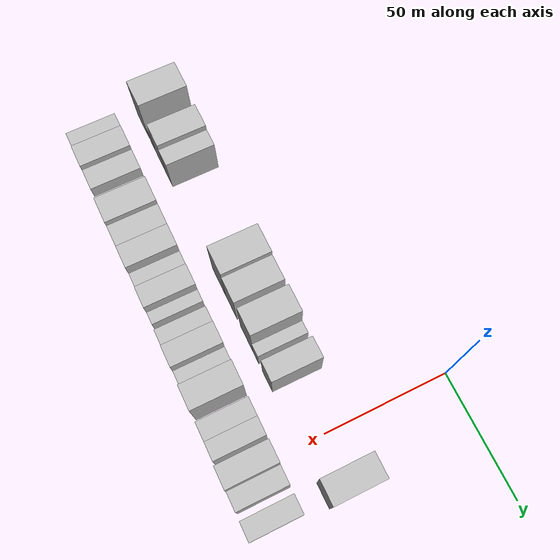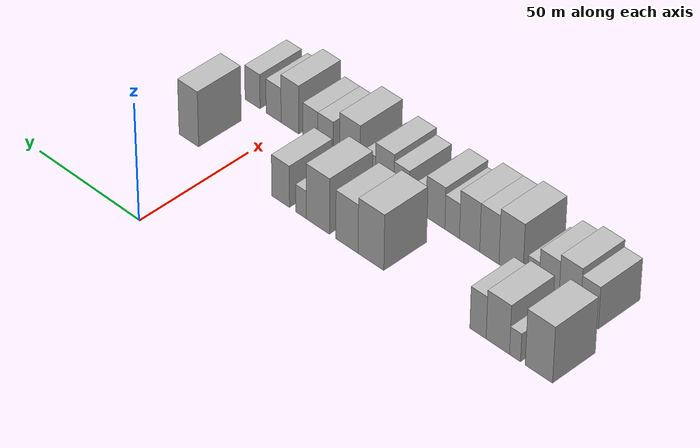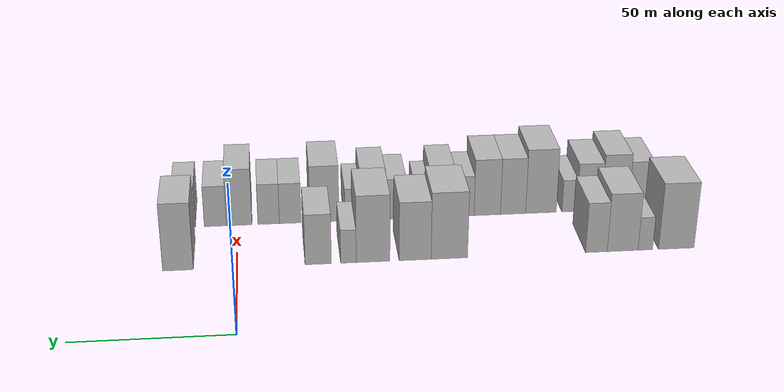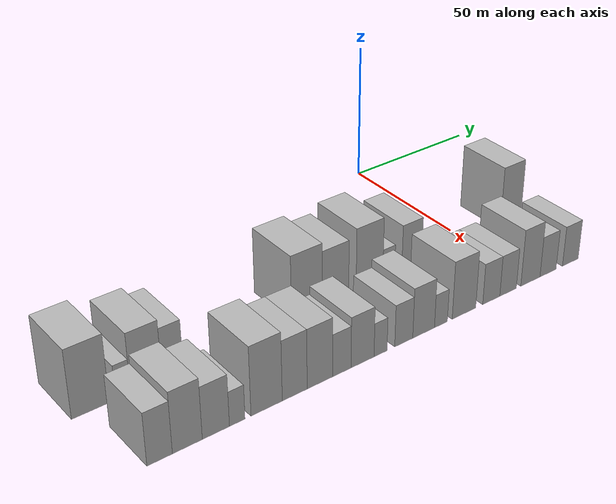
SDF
<sdf version="1.6">
 <world name="default">
  <model name="building_14">
   <static>1</static>
   <pose>50.0000 -143.8482 0 0.000000 0.000000 0.000000</pose>
   <link name="link">
    <pose>0 0 12.00 0 0 0</pose>
    <collision name="collision"><geometry><box><size>20.0000 11.8817 24.0000</size></box></geometry></collision>
    <visual name="visual">
     <cast_shadows>0</cast_shadows>
     <geometry><box><size>20.0000 11.8817 24.0000</size></box></geometry>
     <material>
      <script>
       <uri>model://HANNAS_wall/materials/scripts</uri>
       <uri>model://HANNAS_wall/materials/textures</uri>
       <name>vrc/HANNAS_wall</name>
      </script>
     </material>
    </visual>
   </link>
  </model>
  <model name="building_15">
   <static>1</static>
   <pose>50.0000 -133.4855 0 0.000000 0.000000 0.000000</pose>
   <link name="link">
    <pose>0 0 6.00 0 0 0</pose>
    <collision name="collision"><geometry><box><size>20.0000 4.8438 12.0000</size></box></geometry></collision>
    <visual name="visual">
     <cast_shadows>0</cast_shadows>
     <geometry><box><size>20.0000 4.8438 12.0000</size></box></geometry>
     <material>
      <script>
       <uri>model://HANNAS_wall/materials/scripts</uri>
       <uri>model://HANNAS_wall/materials/textures</uri>
       <name>vrc/HANNAS_wall</name>
      </script>
     </material>
    </visual>
   </link>
  </model>
  <model name="building_16">
   <static>1</static>
   <pose>50.0000 -125.9108 0 0.000000 0.000000 0.000000</pose>
   <link name="link">
    <pose>0 0 10.50 0 0 0</pose>
    <collision name="collision"><geometry><box><size>20.0000 10.3055 21.0000</size></box></geometry></collision>
    <visual name="visual">
     <cast_shadows>0</cast_shadows>
     <geometry><box><size>20.0000 10.3055 21.0000</size></box></geometry>
     <material>
      <script>
       <uri>model://HANNAS_wall/materials/scripts</uri>
       <uri>model://HANNAS_wall/materials/textures</uri>
       <name>vrc/HANNAS_wall</name>
      </script>
     </material>
    </visual>
   </link>
  </model>
  <model name="building_17">
   <static>1</static>
   <pose>50.0000 -117.1440 0 0.000000 0.000000 0.000000</pose>
   <link name="link">
    <pose>0 0 9.00 0 0 0</pose>
    <collision name="collision"><geometry><box><size>20.0000 7.2282 18.0000</size></box></geometry></collision>
    <visual name="visual">
     <cast_shadows>0</cast_shadows>
     <geometry><box><size>20.0000 7.2282 18.0000</size></box></geometry>
     <material>
      <script>
       <uri>model://HANNAS_wall/materials/scripts</uri>
       <uri>model://HANNAS_wall/materials/textures</uri>
       <name>vrc/HANNAS_wall</name>
      </script>
     </material>
    </visual>
   </link>
  </model>
  <model name="building_18">
   <static>1</static>
   <pose>50.0000 -68.6288 0 0.000000 0.000000 0.000000</pose>
   <link name="link">
    <pose>0 0 12.00 0 0 0</pose>
    <collision name="collision"><geometry><box><size>20.0000 11.9341 24.0000</size></box></geometry></collision>
    <visual name="visual">
     <cast_shadows>0</cast_shadows>
     <geometry><box><size>20.0000 11.9341 24.0000</size></box></geometry>
     <material>
      <script>
       <uri>model://HANNAS_wall/materials/scripts</uri>
       <uri>model://HANNAS_wall/materials/textures</uri>
       <name>vrc/HANNAS_wall</name>
      </script>
     </material>
    </visual>
   </link>
  </model>
  <model name="building_19">
   <static>1</static>
   <pose>50.0000 -57.4570 0 0.000000 0.000000 0.000000</pose>
   <link name="link">
    <pose>0 0 10.50 0 0 0</pose>
    <collision name="collision"><geometry><box><size>20.0000 10.4093 21.0000</size></box></geometry></collision>
    <visual name="visual">
     <cast_shadows>0</cast_shadows>
     <geometry><box><size>20.0000 10.4093 21.0000</size></box></geometry>
     <material>
      <script>
       <uri>model://HANNAS_wall/materials/scripts</uri>
       <uri>model://HANNAS_wall/materials/textures</uri>
       <name>vrc/HANNAS_wall</name>
      </script>
     </material>
    </visual>
   </link>
  </model>
  <model name="building_20">
   <static>1</static>
   <pose>50.0000 -43.7756 0 0.000000 0.000000 0.000000</pose>
   <link name="link">
    <pose>0 0 12.00 0 0 0</pose>
    <collision name="collision"><geometry><box><size>20.0000 10.9534 24.0000</size></box></geometry></collision>
    <visual name="visual">
     <cast_shadows>0</cast_shadows>
     <geometry><box><size>20.0000 10.9534 24.0000</size></box></geometry>
     <material>
      <script>
       <uri>model://HANNAS_wall/materials/scripts</uri>
       <uri>model://HANNAS_wall/materials/textures</uri>
       <name>vrc/HANNAS_wall</name>
      </script>
     </material>
    </visual>
   </link>
  </model>
  <model name="building_21">
   <static>1</static>
   <pose>50.0000 -35.7943 0 0.000000 0.000000 0.000000</pose>
   <link name="link">
    <pose>0 0 6.00 0 0 0</pose>
    <collision name="collision"><geometry><box><size>20.0000 5.0093 12.0000</size></box></geometry></collision>
    <visual name="visual">
     <cast_shadows>0</cast_shadows>
     <geometry><box><size>20.0000 5.0093 12.0000</size></box></geometry>
     <material>
      <script>
       <uri>model://HANNAS_wall/materials/scripts</uri>
       <uri>model://HANNAS_wall/materials/textures</uri>
       <name>vrc/HANNAS_wall</name>
      </script>
     </material>
    </visual>
   </link>
  </model>
  <model name="building_22">
   <static>1</static>
   <pose>50.0000 -26.0420 0 0.000000 0.000000 0.000000</pose>
   <link name="link">
    <pose>0 0 9.00 0 0 0</pose>
    <collision name="collision"><geometry><box><size>20.0000 8.4953 18.0000</size></box></geometry></collision>
    <visual name="visual">
     <cast_shadows>0</cast_shadows>
     <geometry><box><size>20.0000 8.4953 18.0000</size></box></geometry>
     <material>
      <script>
       <uri>model://HANNAS_wall/materials/scripts</uri>
       <uri>model://HANNAS_wall/materials/textures</uri>
       <name>vrc/HANNAS_wall</name>
      </script>
     </material>
    </visual>
   </link>
  </model>
  <model name="building_23">
   <static>1</static>
   <pose>50.0000 18.8368 0 0.000000 0.000000 0.000000</pose>
   <link name="link">
    <pose>0 0 12.00 0 0 0</pose>
    <collision name="collision"><geometry><box><size>20.0000 9.7541 24.0000</size></box></geometry></collision>
    <visual name="visual">
     <cast_shadows>0</cast_shadows>
     <geometry><box><size>20.0000 9.7541 24.0000</size></box></geometry>
     <material>
      <script>
       <uri>model://HANNAS_wall/materials/scripts</uri>
       <uri>model://HANNAS_wall/materials/textures</uri>
       <name>vrc/HANNAS_wall</name>
      </script>
     </material>
    </visual>
   </link>
  </model>
  <model name="building_71">
   <static>1</static>
   <pose>79.0000 -138.9372 0 0.000000 0.000000 0.000000</pose>
   <link name="link">
    <pose>0 0 9.00 0 0 0</pose>
    <collision name="collision"><geometry><box><size>20.0000 7.8598 18.0000</size></box></geometry></collision>
    <visual name="visual">
     <cast_shadows>0</cast_shadows>
     <geometry><box><size>20.0000 7.8598 18.0000</size></box></geometry>
     <material>
      <script>
       <uri>model://HANNAS_wall/materials/scripts</uri>
       <uri>model://HANNAS_wall/materials/textures</uri>
       <name>vrc/HANNAS_wall</name>
      </script>
     </material>
    </visual>
   </link>
  </model>
  <model name="building_72">
   <static>1</static>
   <pose>79.0000 -130.2836 0 0.000000 0.000000 0.000000</pose>
   <link name="link">
    <pose>0 0 10.50 0 0 0</pose>
    <collision name="collision"><geometry><box><size>20.0000 9.4475 21.0000</size></box></geometry></collision>
    <visual name="visual">
     <cast_shadows>0</cast_shadows>
     <geometry><box><size>20.0000 9.4475 21.0000</size></box></geometry>
     <material>
      <script>
       <uri>model://HANNAS_wall/materials/scripts</uri>
       <uri>model://HANNAS_wall/materials/textures</uri>
       <name>vrc/HANNAS_wall</name>
      </script>
     </material>
    </visual>
   </link>
  </model>
  <model name="building_73">
   <static>1</static>
   <pose>79.0000 -121.1525 0 0.000000 0.000000 0.000000</pose>
   <link name="link">
    <pose>0 0 9.00 0 0 0</pose>
    <collision name="collision"><geometry><box><size>20.0000 8.8147 18.0000</size></box></geometry></collision>
    <visual name="visual">
     <cast_shadows>0</cast_shadows>
     <geometry><box><size>20.0000 8.8147 18.0000</size></box></geometry>
     <material>
      <script>
       <uri>model://HANNAS_wall/materials/scripts</uri>
       <uri>model://HANNAS_wall/materials/textures</uri>
       <name>vrc/HANNAS_wall</name>
      </script>
     </material>
    </visual>
   </link>
  </model>
  <model name="building_74">
   <static>1</static>
   <pose>79.0000 -114.1731 0 0.000000 0.000000 0.000000</pose>
   <link name="link">
    <pose>0 0 6.00 0 0 0</pose>
    <collision name="collision"><geometry><box><size>20.0000 5.1441 12.0000</size></box></geometry></collision>
    <visual name="visual">
     <cast_shadows>0</cast_shadows>
     <geometry><box><size>20.0000 5.1441 12.0000</size></box></geometry>
     <material>
      <script>
       <uri>model://HANNAS_wall/materials/scripts</uri>
       <uri>model://HANNAS_wall/materials/textures</uri>
       <name>vrc/HANNAS_wall</name>
      </script>
     </material>
    </visual>
   </link>
  </model>
  <model name="building_75">
   <static>1</static>
   <pose>79.0000 -104.2543 0 0.000000 0.000000 0.000000</pose>
   <link name="link">
    <pose>0 0 12.00 0 0 0</pose>
    <collision name="collision"><geometry><box><size>20.0000 10.6934 24.0000</size></box></geometry></collision>
    <visual name="visual">
     <cast_shadows>0</cast_shadows>
     <geometry><box><size>20.0000 10.6934 24.0000</size></box></geometry>
     <material>
      <script>
       <uri>model://HANNAS_wall/materials/scripts</uri>
       <uri>model://HANNAS_wall/materials/textures</uri>
       <name>vrc/HANNAS_wall</name>
      </script>
     </material>
    </visual>
   </link>
  </model>
  <model name="building_76">
   <static>1</static>
   <pose>79.0000 -94.5380 0 0.000000 0.000000 0.000000</pose>
   <link name="link">
    <pose>0 0 10.50 0 0 0</pose>
    <collision name="collision"><geometry><box><size>20.0000 8.7393 21.0000</size></box></geometry></collision>
    <visual name="visual">
     <cast_shadows>0</cast_shadows>
     <geometry><box><size>20.0000 8.7393 21.0000</size></box></geometry>
     <material>
      <script>
       <uri>model://HANNAS_wall/materials/scripts</uri>
       <uri>model://HANNAS_wall/materials/textures</uri>
       <name>vrc/HANNAS_wall</name>
      </script>
     </material>
    </visual>
   </link>
  </model>
  <model name="building_77">
   <static>1</static>
   <pose>79.0000 -85.5623 0 0.000000 0.000000 0.000000</pose>
   <link name="link">
    <pose>0 0 10.50 0 0 0</pose>
    <collision name="collision"><geometry><box><size>20.0000 9.2120 21.0000</size></box></geometry></collision>
    <visual name="visual">
     <cast_shadows>0</cast_shadows>
     <geometry><box><size>20.0000 9.2120 21.0000</size></box></geometry>
     <material>
      <script>
       <uri>model://HANNAS_wall/materials/scripts</uri>
       <uri>model://HANNAS_wall/materials/textures</uri>
       <name>vrc/HANNAS_wall</name>
      </script>
     </material>
    </visual>
   </link>
  </model>
  <model name="building_78">
   <static>1</static>
   <pose>79.0000 -77.6036 0 0.000000 0.000000 0.000000</pose>
   <link name="link">
    <pose>0 0 7.50 0 0 0</pose>
    <collision name="collision"><geometry><box><size>20.0000 6.7054 15.0000</size></box></geometry></collision>
    <visual name="visual">
     <cast_shadows>0</cast_shadows>
     <geometry><box><size>20.0000 6.7054 15.0000</size></box></geometry>
     <material>
      <script>
       <uri>model://HANNAS_wall/materials/scripts</uri>
       <uri>model://HANNAS_wall/materials/textures</uri>
       <name>vrc/HANNAS_wall</name>
      </script>
     </material>
    </visual>
   </link>
  </model>
  <model name="building_79">
   <static>1</static>
   <pose>79.0000 -69.9114 0 0.000000 0.000000 0.000000</pose>
   <link name="link">
    <pose>0 0 9.00 0 0 0</pose>
    <collision name="collision"><geometry><box><size>20.0000 8.6790 18.0000</size></box></geometry></collision>
    <visual name="visual">
     <cast_shadows>0</cast_shadows>
     <geometry><box><size>20.0000 8.6790 18.0000</size></box></geometry>
     <material>
      <script>
       <uri>model://HANNAS_wall/materials/scripts</uri>
       <uri>model://HANNAS_wall/materials/textures</uri>
       <name>vrc/HANNAS_wall</name>
      </script>
     </material>
    </visual>
   </link>
  </model>
  <model name="building_80">
   <static>1</static>
   <pose>79.0000 -63.0847 0 0.000000 0.000000 0.000000</pose>
   <link name="link">
    <pose>0 0 6.00 0 0 0</pose>
    <collision name="collision"><geometry><box><size>20.0000 4.9745 12.0000</size></box></geometry></collision>
    <visual name="visual">
     <cast_shadows>0</cast_shadows>
     <geometry><box><size>20.0000 4.9745 12.0000</size></box></geometry>
     <material>
      <script>
       <uri>model://HANNAS_wall/materials/scripts</uri>
       <uri>model://HANNAS_wall/materials/textures</uri>
       <name>vrc/HANNAS_wall</name>
      </script>
     </material>
    </visual>
   </link>
  </model>
  <model name="building_81">
   <static>1</static>
   <pose>79.0000 -54.0578 0 0.000000 0.000000 0.000000</pose>
   <link name="link">
    <pose>0 0 7.50 0 0 0</pose>
    <collision name="collision"><geometry><box><size>20.0000 7.0793 15.0000</size></box></geometry></collision>
    <visual name="visual">
     <cast_shadows>0</cast_shadows>
     <geometry><box><size>20.0000 7.0793 15.0000</size></box></geometry>
     <material>
      <script>
       <uri>model://HANNAS_wall/materials/scripts</uri>
       <uri>model://HANNAS_wall/materials/textures</uri>
       <name>vrc/HANNAS_wall</name>
      </script>
     </material>
    </visual>
   </link>
  </model>
  <model name="building_82">
   <static>1</static>
   <pose>79.0000 -46.1558 0 0.000000 0.000000 0.000000</pose>
   <link name="link">
    <pose>0 0 9.00 0 0 0</pose>
    <collision name="collision"><geometry><box><size>20.0000 8.7249 18.0000</size></box></geometry></collision>
    <visual name="visual">
     <cast_shadows>0</cast_shadows>
     <geometry><box><size>20.0000 8.7249 18.0000</size></box></geometry>
     <material>
      <script>
       <uri>model://HANNAS_wall/materials/scripts</uri>
       <uri>model://HANNAS_wall/materials/textures</uri>
       <name>vrc/HANNAS_wall</name>
      </script>
     </material>
    </visual>
   </link>
  </model>
  <model name="building_83">
   <static>1</static>
   <pose>79.0000 -39.1553 0 0.000000 0.000000 0.000000</pose>
   <link name="link">
    <pose>0 0 6.00 0 0 0</pose>
    <collision name="collision"><geometry><box><size>20.0000 5.2760 12.0000</size></box></geometry></collision>
    <visual name="visual">
     <cast_shadows>0</cast_shadows>
     <geometry><box><size>20.0000 5.2760 12.0000</size></box></geometry>
     <material>
      <script>
       <uri>model://HANNAS_wall/materials/scripts</uri>
       <uri>model://HANNAS_wall/materials/textures</uri>
       <name>vrc/HANNAS_wall</name>
      </script>
     </material>
    </visual>
   </link>
  </model>
  <model name="building_84">
   <static>1</static>
   <pose>79.0000 -29.5752 0 0.000000 0.000000 0.000000</pose>
   <link name="link">
    <pose>0 0 10.50 0 0 0</pose>
    <collision name="collision"><geometry><box><size>20.0000 9.8843 21.0000</size></box></geometry></collision>
    <visual name="visual">
     <cast_shadows>0</cast_shadows>
     <geometry><box><size>20.0000 9.8843 21.0000</size></box></geometry>
     <material>
      <script>
       <uri>model://HANNAS_wall/materials/scripts</uri>
       <uri>model://HANNAS_wall/materials/textures</uri>
       <name>vrc/HANNAS_wall</name>
      </script>
     </material>
    </visual>
   </link>
  </model>
  <model name="building_85">
   <static>1</static>
   <pose>79.0000 -17.9379 0 0.000000 0.000000 0.000000</pose>
   <link name="link">
    <pose>0 0 7.50 0 0 0</pose>
    <collision name="collision"><geometry><box><size>20.0000 7.3903 15.0000</size></box></geometry></collision>
    <visual name="visual">
     <cast_shadows>0</cast_shadows>
     <geometry><box><size>20.0000 7.3903 15.0000</size></box></geometry>
     <material>
      <script>
       <uri>model://HANNAS_wall/materials/scripts</uri>
       <uri>model://HANNAS_wall/materials/textures</uri>
       <name>vrc/HANNAS_wall</name>
      </script>
     </material>
    </visual>
   </link>
  </model>
  <model name="building_86">
   <static>1</static>
   <pose>79.0000 -10.6068 0 0.000000 0.000000 0.000000</pose>
   <link name="link">
    <pose>0 0 7.50 0 0 0</pose>
    <collision name="collision"><geometry><box><size>20.0000 7.2719 15.0000</size></box></geometry></collision>
    <visual name="visual">
     <cast_shadows>0</cast_shadows>
     <geometry><box><size>20.0000 7.2719 15.0000</size></box></geometry>
     <material>
      <script>
       <uri>model://HANNAS_wall/materials/scripts</uri>
       <uri>model://HANNAS_wall/materials/textures</uri>
       <name>vrc/HANNAS_wall</name>
      </script>
     </material>
    </visual>
   </link>
  </model>
  <model name="building_87">
   <static>1</static>
   <pose>79.0000 -0.6291 0 0.000000 0.000000 0.000000</pose>
   <link name="link">
    <pose>0 0 10.50 0 0 0</pose>
    <collision name="collision"><geometry><box><size>20.0000 8.6836 21.0000</size></box></geometry></collision>
    <visual name="visual">
     <cast_shadows>0</cast_shadows>
     <geometry><box><size>20.0000 8.6836 21.0000</size></box></geometry>
     <material>
      <script>
       <uri>model://HANNAS_wall/materials/scripts</uri>
       <uri>model://HANNAS_wall/materials/textures</uri>
       <name>vrc/HANNAS_wall</name>
      </script>
     </material>
    </visual>
   </link>
  </model>
  <model name="building_88">
   <static>1</static>
   <pose>79.0000 7.4197 0 0.000000 0.000000 0.000000</pose>
   <link name="link">
    <pose>0 0 7.50 0 0 0</pose>
    <collision name="collision"><geometry><box><size>20.0000 7.4140 15.0000</size></box></geometry></collision>
    <visual name="visual">
     <cast_shadows>0</cast_shadows>
     <geometry><box><size>20.0000 7.4140 15.0000</size></box></geometry>
     <material>
      <script>
       <uri>model://HANNAS_wall/materials/scripts</uri>
       <uri>model://HANNAS_wall/materials/textures</uri>
       <name>vrc/HANNAS_wall</name>
      </script>
     </material>
    </visual>
   </link>
  </model>
  <model name="building_89">
   <static>1</static>
   <pose>79.0000 17.8469 0 0.000000 0.000000 0.000000</pose>
   <link name="link">
    <pose>0 0 7.50 0 0 0</pose>
    <collision name="collision"><geometry><box><size>20.0000 7.4405 15.0000</size></box></geometry></collision>
    <visual name="visual">
     <cast_shadows>0</cast_shadows>
     <geometry><box><size>20.0000 7.4405 15.0000</size></box></geometry>
     <material>
      <script>
       <uri>model://HANNAS_wall/materials/scripts</uri>
       <uri>model://HANNAS_wall/materials/textures</uri>
       <name>vrc/HANNAS_wall</name>
      </script>
     </material>
    </visual>
   </link>
  </model>
 </world>
</sdf>
